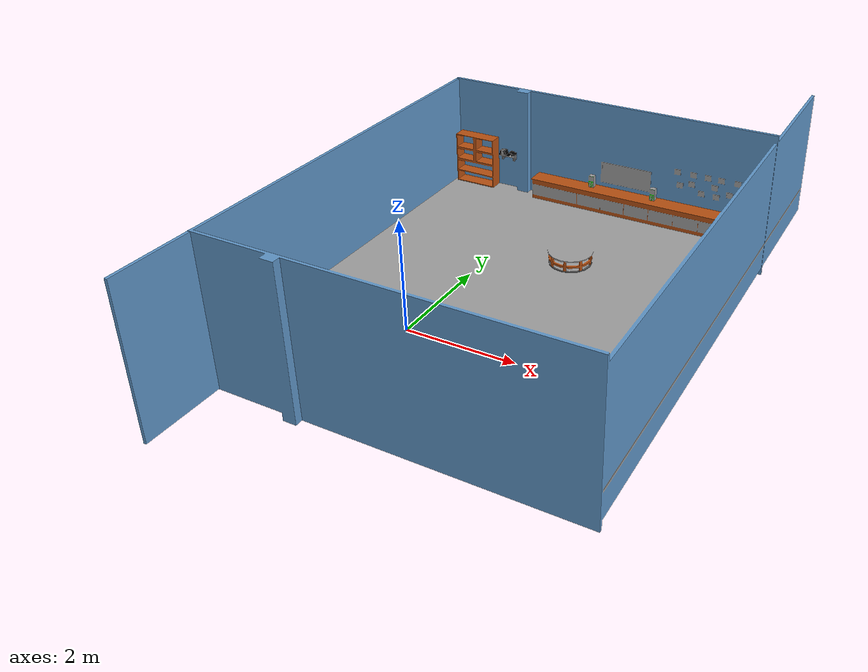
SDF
<?xml version="1.0" ?>
<sdf version="1.4">
  <model name="test_zone">
    <link name="link">
      <inertial>
        <mass>15</mass>
        <inertia>
          <ixx>0.0</ixx>
          <ixy>0.0</ixy>
          <ixz>0.0</ixz>
          <iyy>0.0</iyy>
          <iyz>0.0</iyz>
          <izz>0.1</izz>
        </inertia>
      </inertial>
      <collision name="collision">
        <geometry>
          <mesh>
            <uri>model://house/meshes/house_colored.dae</uri>
          </mesh>
        </geometry>
      </collision>
      <visual name="visual">
        <geometry>
          <mesh>
            <uri>model://house/meshes/house_colored.dae</uri>
          </mesh>
        </geometry>
      </visual>
    </link>
    <static>1</static>
  </model>
</sdf>
